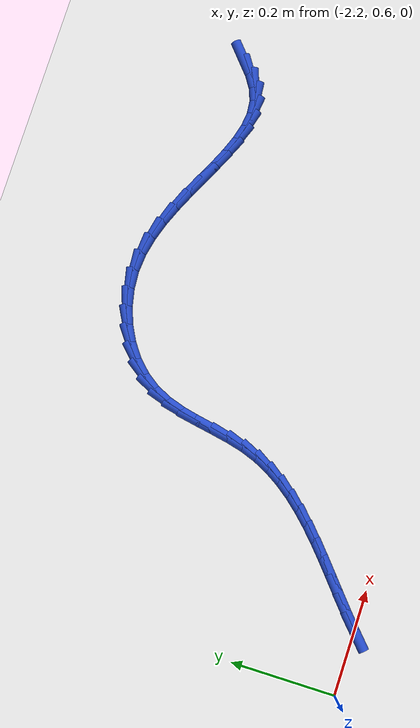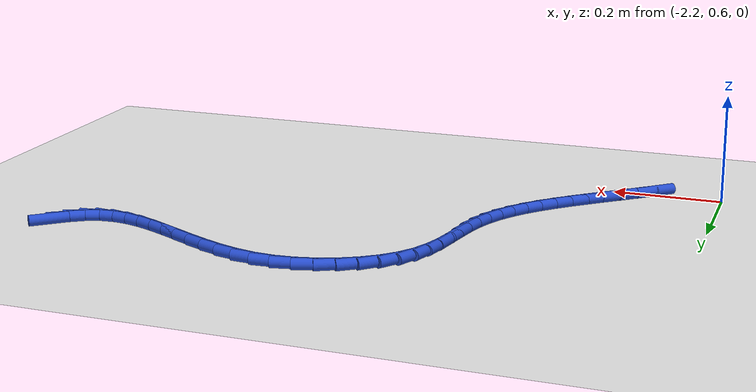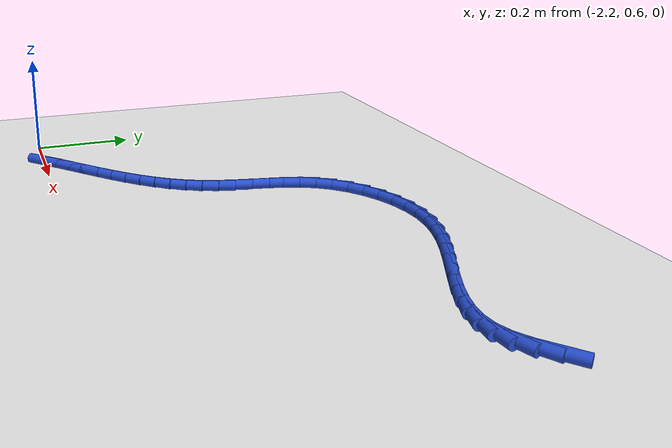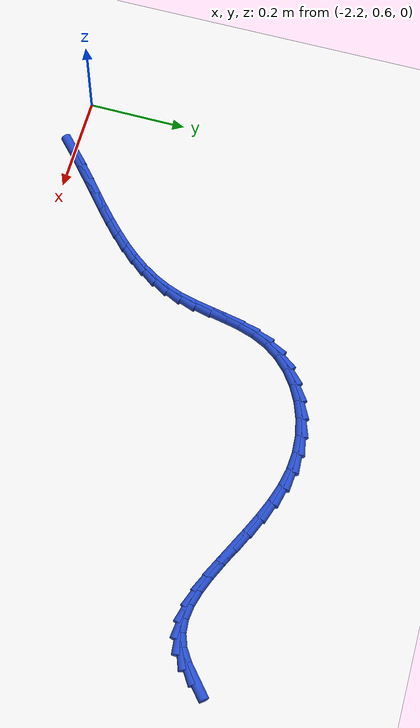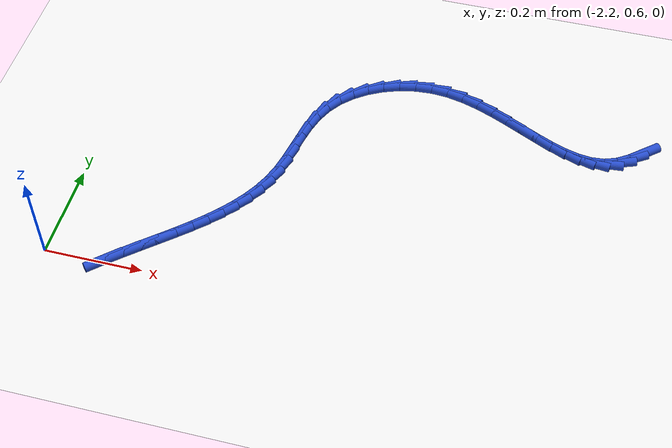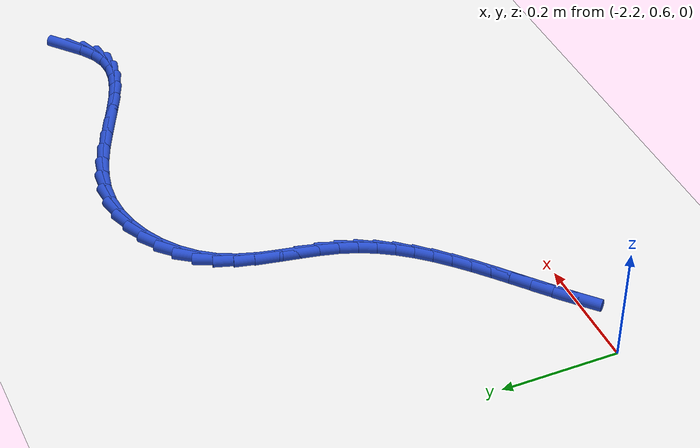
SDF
<sdf version="1.6">
 <world name="default">
  <model name="ground_plane">
   <static>1</static>
   <link name="link">
    <collision name="collision">
     <geometry><plane><normal>0 0 1</normal><size>100 100</size></plane></geometry>
     <surface><friction><ode><mu>100</mu><mu2>50</mu2></ode></friction></surface>
    </collision>
    <visual name="visual">
     <cast_shadows>0</cast_shadows>
     <geometry><plane><normal>0 0 1</normal><size>100 100</size></plane></geometry>
     <material>
      <script><uri>file://media/materials/scripts/gazebo.material</uri><name>Gazebo/WhiteGlow</name></script>
     </material>
    </visual>
   </link>
  </model>
  <model name="line">
   <link name="link_60">
    <pose>-1.1020428250675303 1.1245171035797252 0.01 0 1.57 0.7121416324963395</pose>
    <collision name="collision">
     <geometry><cylinder><radius>0.01</radius><length>0.08</length></cylinder></geometry>
    </collision>
    <visual name="visual">
     <material>
      <script><name>Gazebo/Blue</name><uri>file://media/materials/scripts/gazebo.material</uri></script>
     </material>
     <geometry><cylinder><radius>0.01</radius><length>0.08</length></cylinder></geometry>
    </visual>
   </link>
   <link name="link_61">
    <pose>-1.1256290060581469 1.1041561114463307 0.01 0 1.57 0.5747515165996864</pose>
    <collision name="collision">
     <geometry><cylinder><radius>0.01</radius><length>0.08</length></cylinder></geometry>
    </collision>
    <visual name="visual">
     <material>
      <script><name>Gazebo/Blue</name><uri>file://media/materials/scripts/gazebo.material</uri></script>
     </material>
     <geometry><cylinder><radius>0.01</radius><length>0.08</length></cylinder></geometry>
    </visual>
   </link>
   <link name="link_62">
    <pose>-1.149671786934099 1.0885837774445564 0.01 0 1.57 0.3488466369928882</pose>
    <collision name="collision">
     <geometry><cylinder><radius>0.01</radius><length>0.08</length></cylinder></geometry>
    </collision>
    <visual name="visual">
     <material>
      <script><name>Gazebo/Blue</name><uri>file://media/materials/scripts/gazebo.material</uri></script>
     </material>
     <geometry><cylinder><radius>0.01</radius><length>0.08</length></cylinder></geometry>
    </visual>
   </link>
   <link name="link_63">
    <pose>-1.174841246288688 1.0794290913362818 0.01 0 1.57 0.0899843176316116</pose>
    <collision name="collision">
     <geometry><cylinder><radius>0.01</radius><length>0.08</length></cylinder></geometry>
    </collision>
    <visual name="visual">
     <material>
      <script><name>Gazebo/Blue</name><uri>file://media/materials/scripts/gazebo.material</uri></script>
     </material>
     <geometry><cylinder><radius>0.01</radius><length>0.08</length></cylinder></geometry>
    </visual>
   </link>
   <link name="link_64">
    <pose>-1.2014358888739824 1.077029510461045 0.01 0 1.57 -0.11968812535510313</pose>
    <collision name="collision">
     <geometry><cylinder><radius>0.01</radius><length>0.08</length></cylinder></geometry>
    </collision>
    <visual name="visual">
     <material>
      <script><name>Gazebo/Blue</name><uri>file://media/materials/scripts/gazebo.material</uri></script>
     </material>
     <geometry><cylinder><radius>0.01</radius><length>0.08</length></cylinder></geometry>
    </visual>
   </link>
   <link name="link_65">
    <pose>-1.2293705790894476 1.0803890184341105 0.01 0 1.57 -0.2696063682310932</pose>
    <collision name="collision">
     <geometry><cylinder><radius>0.01</radius><length>0.08</length></cylinder></geometry>
    </collision>
    <visual name="visual">
     <material>
      <script><name>Gazebo/Blue</name><uri>file://media/materials/scripts/gazebo.material</uri></script>
     </material>
     <geometry><cylinder><radius>0.01</radius><length>0.08</length></cylinder></geometry>
    </visual>
   </link>
   <link name="link_66">
    <pose>-1.2585425257451917 1.0884502308099155 0.01 0 1.57 -0.3685878554628061</pose>
    <collision name="collision">
     <geometry><cylinder><radius>0.01</radius><length>0.08</length></cylinder></geometry>
    </collision>
    <visual name="visual">
     <material>
      <script><name>Gazebo/Blue</name><uri>file://media/materials/scripts/gazebo.material</uri></script>
     </material>
     <geometry><cylinder><radius>0.01</radius><length>0.08</length></cylinder></geometry>
    </visual>
   </link>
   <link name="link_67">
    <pose>-1.288848937651321 1.100155763142898 0.01 0 1.57 -0.427893086260009</pose>
    <collision name="collision">
     <geometry><cylinder><radius>0.01</radius><length>0.08</length></cylinder></geometry>
    </collision>
    <visual name="visual">
     <material>
      <script><name>Gazebo/Blue</name><uri>file://media/materials/scripts/gazebo.material</uri></script>
     </material>
     <geometry><cylinder><radius>0.01</radius><length>0.08</length></cylinder></geometry>
    </visual>
   </link>
   <link name="link_68">
    <pose>-1.3201870236179438 1.1144482309874966 0.01 0 1.57 -0.45589561942420453</pose>
    <collision name="collision">
     <geometry><cylinder><radius>0.01</radius><length>0.08</length></cylinder></geometry>
    </collision>
    <visual name="visual">
     <material>
      <script><name>Gazebo/Blue</name><uri>file://media/materials/scripts/gazebo.material</uri></script>
     </material>
     <geometry><cylinder><radius>0.01</radius><length>0.08</length></cylinder></geometry>
    </visual>
   </link>
   <link name="link_69">
    <pose>-1.3524539924551677 1.1302702498981496 0.01 0 1.57 -0.45752877678386916</pose>
    <collision name="collision">
     <geometry><cylinder><radius>0.01</radius><length>0.08</length></cylinder></geometry>
    </collision>
    <visual name="visual">
     <material>
      <script><name>Gazebo/Blue</name><uri>file://media/materials/scripts/gazebo.material</uri></script>
     </material>
     <geometry><cylinder><radius>0.01</radius><length>0.08</length></cylinder></geometry>
    </visual>
   </link>
   <link name="link_70">
    <pose>-1.3855470529731004 1.1465644354292943 0.01 0 1.57 -0.43487732825436</pose>
    <collision name="collision">
     <geometry><cylinder><radius>0.01</radius><length>0.08</length></cylinder></geometry>
    </collision>
    <visual name="visual">
     <material>
      <script><name>Gazebo/Blue</name><uri>file://media/materials/scripts/gazebo.material</uri></script>
     </material>
     <geometry><cylinder><radius>0.01</radius><length>0.08</length></cylinder></geometry>
    </visual>
   </link>
   <link name="link_71">
    <pose>-1.4193634139818494 1.1622734031353688 0.01 0 1.57 -0.38778514131040825</pose>
    <collision name="collision">
     <geometry><cylinder><radius>0.01</radius><length>0.08</length></cylinder></geometry>
    </collision>
    <visual name="visual">
     <material>
      <script><name>Gazebo/Blue</name><uri>file://media/materials/scripts/gazebo.material</uri></script>
     </material>
     <geometry><cylinder><radius>0.01</radius><length>0.08</length></cylinder></geometry>
    </visual>
   </link>
   <link name="link_72">
    <pose>-1.4538002842915223 1.1763397685708115 0.01 0 1.57 -0.31439070102544975</pose>
    <collision name="collision">
     <geometry><cylinder><radius>0.01</radius><length>0.08</length></cylinder></geometry>
    </collision>
    <visual name="visual">
     <material>
      <script><name>Gazebo/Blue</name><uri>file://media/materials/scripts/gazebo.material</uri></script>
     </material>
     <geometry><cylinder><radius>0.01</radius><length>0.08</length></cylinder></geometry>
    </visual>
   </link>
   <link name="link_73">
    <pose>-1.4887548727122262 1.18770614729006 0.01 0 1.57 -0.21189943263879663</pose>
    <collision name="collision">
     <geometry><cylinder><radius>0.01</radius><length>0.08</length></cylinder></geometry>
    </collision>
    <visual name="visual">
     <material>
      <script><name>Gazebo/Blue</name><uri>file://media/materials/scripts/gazebo.material</uri></script>
     </material>
     <geometry><cylinder><radius>0.01</radius><length>0.08</length></cylinder></geometry>
    </visual>
   </link>
   <link name="link_74">
    <pose>-1.5241243880540698 1.1953151548475531 0.01 0 1.57 -0.07851814373082666</pose>
    <collision name="collision">
     <geometry><cylinder><radius>0.01</radius><length>0.08</length></cylinder></geometry>
    </collision>
    <visual name="visual">
     <material>
      <script><name>Gazebo/Blue</name><uri>file://media/materials/scripts/gazebo.material</uri></script>
     </material>
     <geometry><cylinder><radius>0.01</radius><length>0.08</length></cylinder></geometry>
    </visual>
   </link>
   <link name="link_75">
    <pose>-1.5597999997566478 1.1981221084092377 0.01 0 1.57 0.06934191645555678</pose>
    <collision name="collision">
     <geometry><cylinder><radius>0.01</radius><length>0.08</length></cylinder></geometry>
    </collision>
    <visual name="visual">
     <material>
      <script><name>Gazebo/Blue</name><uri>file://media/materials/scripts/gazebo.material</uri></script>
     </material>
     <geometry><cylinder><radius>0.01</radius><length>0.08</length></cylinder></geometry>
    </visual>
   </link>
   <link name="link_76">
    <pose>-1.5954032703549457 1.195649344858717 0.01 0 1.57 0.21095990903132003</pose>
    <collision name="collision">
     <geometry><cylinder><radius>0.01</radius><length>0.08</length></cylinder></geometry>
    </collision>
    <visual name="visual">
     <material>
      <script><name>Gazebo/Blue</name><uri>file://media/materials/scripts/gazebo.material</uri></script>
     </material>
     <geometry><cylinder><radius>0.01</radius><length>0.08</length></cylinder></geometry>
    </visual>
   </link>
   <link name="link_77">
    <pose>-1.630183937880906 1.188201198206256 0.01 0 1.57 0.34867539546021437</pose>
    <collision name="collision">
     <geometry><cylinder><radius>0.01</radius><length>0.08</length></cylinder></geometry>
    </collision>
    <visual name="visual">
     <material>
      <script><name>Gazebo/Blue</name><uri>file://media/materials/scripts/gazebo.material</uri></script>
     </material>
     <geometry><cylinder><radius>0.01</radius><length>0.08</length></cylinder></geometry>
    </visual>
   </link>
   <link name="link_78">
    <pose>-1.6633645929452439 1.1761390971538992 0.01 0 1.57 0.48707754384688257</pose>
    <collision name="collision">
     <geometry><cylinder><radius>0.01</radius><length>0.08</length></cylinder></geometry>
    </collision>
    <visual name="visual">
     <material>
      <script><name>Gazebo/Blue</name><uri>file://media/materials/scripts/gazebo.material</uri></script>
     </material>
     <geometry><cylinder><radius>0.01</radius><length>0.08</length></cylinder></geometry>
    </visual>
   </link>
   <link name="link_79">
    <pose>-1.6941678261586706 1.1598244704036895 0.01 0 1.57 0.6311058480923942</pose>
    <collision name="collision">
     <geometry><cylinder><radius>0.01</radius><length>0.08</length></cylinder></geometry>
    </collision>
    <visual name="visual">
     <material>
      <script><name>Gazebo/Blue</name><uri>file://media/materials/scripts/gazebo.material</uri></script>
     </material>
     <geometry><cylinder><radius>0.01</radius><length>0.08</length></cylinder></geometry>
    </visual>
   </link>
   <link name="link_80">
    <pose>-1.721816228131901 1.1396187466576722 0.01 0 1.57 0.7858034334804878</pose>
    <collision name="collision">
     <geometry><cylinder><radius>0.01</radius><length>0.08</length></cylinder></geometry>
    </collision>
    <visual name="visual">
     <material>
      <script><name>Gazebo/Blue</name><uri>file://media/materials/scripts/gazebo.material</uri></script>
     </material>
     <geometry><cylinder><radius>0.01</radius><length>0.08</length></cylinder></geometry>
    </visual>
   </link>
   <link name="link_81">
    <pose>-1.7455323894756491 1.115883354617891 0.01 0 1.57 0.9557424277049291</pose>
    <collision name="collision">
     <geometry><cylinder><radius>0.01</radius><length>0.08</length></cylinder></geometry>
    </collision>
    <visual name="visual">
     <material>
      <script><name>Gazebo/Blue</name><uri>file://media/materials/scripts/gazebo.material</uri></script>
     </material>
     <geometry><cylinder><radius>0.01</radius><length>0.08</length></cylinder></geometry>
    </visual>
   </link>
   <link name="link_82">
    <pose>-1.7645389450924072 1.0889797317391976 0.01 0 1.57 1.1310995463453934</pose>
    <collision name="collision">
     <geometry><cylinder><radius>0.01</radius><length>0.08</length></cylinder></geometry>
    </collision>
    <visual name="visual">
     <material>
      <script><name>Gazebo/Blue</name><uri>file://media/materials/scripts/gazebo.material</uri></script>
     </material>
     <geometry><cylinder><radius>0.01</radius><length>0.08</length></cylinder></geometry>
    </visual>
   </link>
   <link name="link_83">
    <pose>-1.7784761996509881 1.0593518541112779 0.01 0 1.57 1.26601682610508</pose>
    <collision name="collision">
     <geometry><cylinder><radius>0.01</radius><length>0.08</length></cylinder></geometry>
    </collision>
    <visual name="visual">
     <material>
      <script><name>Gazebo/Blue</name><uri>file://media/materials/scripts/gazebo.material</uri></script>
     </material>
     <geometry><cylinder><radius>0.01</radius><length>0.08</length></cylinder></geometry>
    </visual>
   </link>
   <link name="link_84">
    <pose>-1.7884243808319977 1.027728251050418 0.01 0 1.57 1.350561683526084</pose>
    <collision name="collision">
     <geometry><cylinder><radius>0.01</radius><length>0.08</length></cylinder></geometry>
    </collision>
    <visual name="visual">
     <material>
      <script><name>Gazebo/Blue</name><uri>file://media/materials/scripts/gazebo.material</uri></script>
     </material>
     <geometry><cylinder><radius>0.01</radius><length>0.08</length></cylinder></geometry>
    </visual>
   </link>
   <link name="link_85">
    <pose>-1.7957737887640741 0.9948987274514199 0.01 0 1.57 1.3881411159496293</pose>
    <collision name="collision">
     <geometry><cylinder><radius>0.01</radius><length>0.08</length></cylinder></geometry>
    </collision>
    <visual name="visual">
     <material>
      <script><name>Gazebo/Blue</name><uri>file://media/materials/scripts/gazebo.material</uri></script>
     </material>
     <geometry><cylinder><radius>0.01</radius><length>0.08</length></cylinder></geometry>
    </visual>
   </link>
   <link name="link_86">
    <pose>-1.8019147235758557 0.9616530882090887 0.01 0 1.57 1.380771868359191</pose>
    <collision name="collision">
     <geometry><cylinder><radius>0.01</radius><length>0.08</length></cylinder></geometry>
    </collision>
    <visual name="visual">
     <material>
      <script><name>Gazebo/Blue</name><uri>file://media/materials/scripts/gazebo.material</uri></script>
     </material>
     <geometry><cylinder><radius>0.01</radius><length>0.08</length></cylinder></geometry>
    </visual>
   </link>
   <link name="link_87">
    <pose>-1.8082374853959793 0.9287811382182259 0.01 0 1.57 1.3267744009114375</pose>
    <collision name="collision">
     <geometry><cylinder><radius>0.01</radius><length>0.08</length></cylinder></geometry>
    </collision>
    <visual name="visual">
     <material>
      <script><name>Gazebo/Blue</name><uri>file://media/materials/scripts/gazebo.material</uri></script>
     </material>
     <geometry><cylinder><radius>0.01</radius><length>0.08</length></cylinder></geometry>
    </visual>
   </link>
   <link name="link_88">
    <pose>-1.8161323743530828 0.897072682373635 0.01 0 1.57 1.2274738619667882</pose>
    <collision name="collision">
     <geometry><cylinder><radius>0.01</radius><length>0.08</length></cylinder></geometry>
    </collision>
    <visual name="visual">
     <material>
      <script><name>Gazebo/Blue</name><uri>file://media/materials/scripts/gazebo.material</uri></script>
     </material>
     <geometry><cylinder><radius>0.01</radius><length>0.08</length></cylinder></geometry>
    </visual>
   </link>
   <link name="link_89">
    <pose>-1.8268100085319103 0.8672034609447249 0.01 0 1.57 1.1194870548087532</pose>
    <collision name="collision">
     <geometry><cylinder><radius>0.01</radius><length>0.08</length></cylinder></geometry>
    </collision>
    <visual name="visual">
     <material>
      <script><name>Gazebo/Blue</name><uri>file://media/materials/scripts/gazebo.material</uri></script>
     </material>
     <geometry><cylinder><radius>0.01</radius><length>0.08</length></cylinder></geometry>
    </visual>
   </link>
   <link name="link_90">
    <pose>-1.8404003168718488 0.8391631779122484 0.01 0 1.57 1.0208603955075322</pose>
    <collision name="collision">
     <geometry><cylinder><radius>0.01</radius><length>0.08</length></cylinder></geometry>
    </collision>
    <visual name="visual">
     <material>
      <script><name>Gazebo/Blue</name><uri>file://media/materials/scripts/gazebo.material</uri></script>
     </material>
     <geometry><cylinder><radius>0.01</radius><length>0.08</length></cylinder></geometry>
    </visual>
   </link>
   <link name="link_91">
    <pose>-1.8566311136419116 0.8126862693501175 0.01 0 1.57 0.9346100093168332</pose>
    <collision name="collision">
     <geometry><cylinder><radius>0.01</radius><length>0.08</length></cylinder></geometry>
    </collision>
    <visual name="visual">
     <material>
      <script><name>Gazebo/Blue</name><uri>file://media/materials/scripts/gazebo.material</uri></script>
     </material>
     <geometry><cylinder><radius>0.01</radius><length>0.08</length></cylinder></geometry>
    </visual>
   </link>
   <link name="link_92">
    <pose>-1.8752295378650252 0.7875067426767696 0.01 0 1.57 0.8622945082401585</pose>
    <collision name="collision">
     <geometry><cylinder><radius>0.01</radius><length>0.08</length></cylinder></geometry>
    </collision>
    <visual name="visual">
     <material>
      <script><name>Gazebo/Blue</name><uri>file://media/materials/scripts/gazebo.material</uri></script>
     </material>
     <geometry><cylinder><radius>0.01</radius><length>0.08</length></cylinder></geometry>
    </visual>
   </link>
   <link name="link_93">
    <pose>-1.8959227285641171 0.7633586053106424 0.01 0 1.57 0.8042997320158591</pose>
    <collision name="collision">
     <geometry><cylinder><radius>0.01</radius><length>0.08</length></cylinder></geometry>
    </collision>
    <visual name="visual">
     <material>
      <script><name>Gazebo/Blue</name><uri>file://media/materials/scripts/gazebo.material</uri></script>
     </material>
     <geometry><cylinder><radius>0.01</radius><length>0.08</length></cylinder></geometry>
    </visual>
   </link>
   <link name="link_94">
    <pose>-1.918437824762113 0.7399758646701734 0.01 0 1.57 0.7602518638628742</pose>
    <collision name="collision">
     <geometry><cylinder><radius>0.01</radius><length>0.08</length></cylinder></geometry>
    </collision>
    <visual name="visual">
     <material>
      <script><name>Gazebo/Blue</name><uri>file://media/materials/scripts/gazebo.material</uri></script>
     </material>
     <geometry><cylinder><radius>0.01</radius><length>0.08</length></cylinder></geometry>
    </visual>
   </link>
   <link name="link_95">
    <pose>-1.9425019654819393 0.7170925281738004 0.01 0 1.57 0.7293954097821158</pose>
    <collision name="collision">
     <geometry><cylinder><radius>0.01</radius><length>0.08</length></cylinder></geometry>
    </collision>
    <visual name="visual">
     <material>
      <script><name>Gazebo/Blue</name><uri>file://media/materials/scripts/gazebo.material</uri></script>
     </material>
     <geometry><cylinder><radius>0.01</radius><length>0.08</length></cylinder></geometry>
    </visual>
   </link>
   <link name="link_96">
    <pose>-1.9678422897465246 0.6944426032399605 0.01 0 1.57 0.7108592151188232</pose>
    <collision name="collision">
     <geometry><cylinder><radius>0.01</radius><length>0.08</length></cylinder></geometry>
    </collision>
    <visual name="visual">
     <material>
      <script><name>Gazebo/Blue</name><uri>file://media/materials/scripts/gazebo.material</uri></script>
     </material>
     <geometry><cylinder><radius>0.01</radius><length>0.08</length></cylinder></geometry>
    </visual>
   </link>
   <link name="link_97">
    <pose>-1.9941859365787944 0.6717600972870921 0.01 0 1.57 0.7038093624062478</pose>
    <collision name="collision">
     <geometry><cylinder><radius>0.01</radius><length>0.08</length></cylinder></geometry>
    </collision>
    <visual name="visual">
     <material>
      <script><name>Gazebo/Blue</name><uri>file://media/materials/scripts/gazebo.material</uri></script>
     </material>
     <geometry><cylinder><radius>0.01</radius><length>0.08</length></cylinder></geometry>
    </visual>
   </link>
   <link name="link_98">
    <pose>-2.021260045001676 0.6487790177336326 0.01 0 1.57 0.7075162765075105</pose>
    <collision name="collision">
     <geometry><cylinder><radius>0.01</radius><length>0.08</length></cylinder></geometry>
    </collision>
    <visual name="visual">
     <material>
      <script><name>Gazebo/Blue</name><uri>file://media/materials/scripts/gazebo.material</uri></script>
     </material>
     <geometry><cylinder><radius>0.01</radius><length>0.08</length></cylinder></geometry>
    </visual>
   </link>
   <link name="link_99">
    <pose>-2.0487917540380955 0.6252333719980191 0.01 0 1.57 0.7213646117860302</pose>
    <collision name="collision">
     <geometry><cylinder><radius>0.01</radius><length>0.08</length></cylinder></geometry>
    </collision>
    <visual name="visual">
     <material>
      <script><name>Gazebo/Blue</name><uri>file://media/materials/scripts/gazebo.material</uri></script>
     </material>
     <geometry><cylinder><radius>0.01</radius><length>0.08</length></cylinder></geometry>
    </visual>
   </link>
   <link name="link_100">
    <pose>-2.0765082027109814 0.6008571674986892 0.01 0 1.57 0.7448602596607712</pose>
    <collision name="collision">
     <geometry><cylinder><radius>0.01</radius><length>0.08</length></cylinder></geometry>
    </collision>
    <visual name="visual">
     <material>
      <script><name>Gazebo/Blue</name><uri>file://media/materials/scripts/gazebo.material</uri></script>
     </material>
     <geometry><cylinder><radius>0.01</radius><length>0.08</length></cylinder></geometry>
    </visual>
   </link>
  </model>
 </world>
</sdf>
